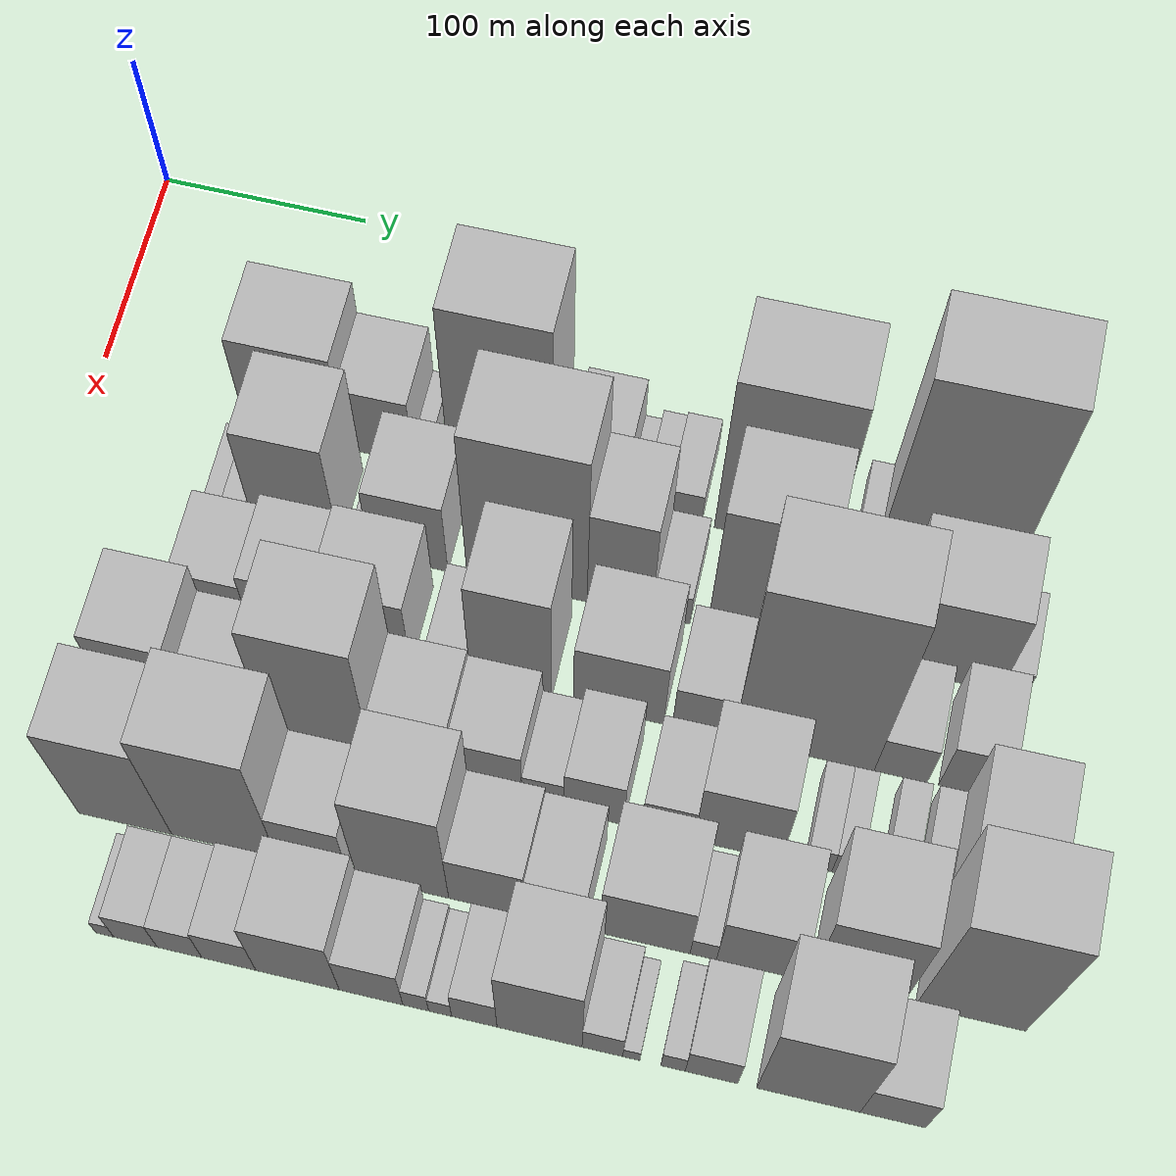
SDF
<sdf version="1.6">
 <world name="default">
  <model name="building_22">
   <static>1</static>
   <pose>100.0000 98.5002 0 0.000000 0.000000 0.000000</pose>
   <link name="link">
    <pose>0 0 43.50 0 0 0</pose>
    <collision name="collision"><geometry><box><size>40.0000 47.4005 87.0000</size></box></geometry></collision>
    <visual name="visual">
     <cast_shadows>0</cast_shadows>
     <geometry><box><size>40.0000 47.4005 87.0000</size></box></geometry>
     <material>
      <script>
       <uri>model://HANNAS_wall/materials/scripts</uri>
       <uri>model://HANNAS_wall/materials/textures</uri>
       <name>vrc/HANNAS_wall</name>
      </script>
     </material>
    </visual>
   </link>
  </model>
  <model name="building_23">
   <static>1</static>
   <pose>100.0000 138.7898 0 0.000000 0.000000 0.000000</pose>
   <link name="link">
    <pose>0 0 30.00 0 0 0</pose>
    <collision name="collision"><geometry><box><size>40.0000 33.1786 60.0000</size></box></geometry></collision>
    <visual name="visual">
     <cast_shadows>0</cast_shadows>
     <geometry><box><size>40.0000 33.1786 60.0000</size></box></geometry>
     <material>
      <script>
       <uri>model://HANNAS_wall/materials/scripts</uri>
       <uri>model://HANNAS_wall/materials/textures</uri>
       <name>vrc/HANNAS_wall</name>
      </script>
     </material>
    </visual>
   </link>
  </model>
  <model name="building_24">
   <static>1</static>
   <pose>100.0000 159.4438 0 0.000000 0.000000 0.000000</pose>
   <link name="link">
    <pose>0 0 9.00 0 0 0</pose>
    <collision name="collision"><geometry><box><size>40.0000 8.1295 18.0000</size></box></geometry></collision>
    <visual name="visual">
     <cast_shadows>0</cast_shadows>
     <geometry><box><size>40.0000 8.1295 18.0000</size></box></geometry>
     <material>
      <script>
       <uri>model://HANNAS_wall/materials/scripts</uri>
       <uri>model://HANNAS_wall/materials/textures</uri>
       <name>vrc/HANNAS_wall</name>
      </script>
     </material>
    </visual>
   </link>
  </model>
  <model name="building_25">
   <static>1</static>
   <pose>100.0000 197.3159 0 0.000000 0.000000 0.000000</pose>
   <link name="link">
    <pose>0 0 78.00 0 0 0</pose>
    <collision name="collision"><geometry><box><size>40.0000 49.6146 156.0000</size></box></geometry></collision>
    <visual name="visual">
     <cast_shadows>0</cast_shadows>
     <geometry><box><size>40.0000 49.6146 156.0000</size></box></geometry>
     <material>
      <script>
       <uri>model://HANNAS_wall/materials/scripts</uri>
       <uri>model://HANNAS_wall/materials/textures</uri>
       <name>vrc/HANNAS_wall</name>
      </script>
     </material>
    </visual>
   </link>
  </model>
  <model name="building_26">
   <static>1</static>
   <pose>100.0000 242.6828 0 0.000000 0.000000 0.000000</pose>
   <link name="link">
    <pose>0 0 27.00 0 0 0</pose>
    <collision name="collision"><geometry><box><size>40.0000 27.1191 54.0000</size></box></geometry></collision>
    <visual name="visual">
     <cast_shadows>0</cast_shadows>
     <geometry><box><size>40.0000 27.1191 54.0000</size></box></geometry>
     <material>
      <script>
       <uri>model://HANNAS_wall/materials/scripts</uri>
       <uri>model://HANNAS_wall/materials/textures</uri>
       <name>vrc/HANNAS_wall</name>
      </script>
     </material>
    </visual>
   </link>
  </model>
  <model name="building_27">
   <static>1</static>
   <pose>100.0000 260.3676 0 0.000000 0.000000 0.000000</pose>
   <link name="link">
    <pose>0 0 9.00 0 0 0</pose>
    <collision name="collision"><geometry><box><size>40.0000 8.2504 18.0000</size></box></geometry></collision>
    <visual name="visual">
     <cast_shadows>0</cast_shadows>
     <geometry><box><size>40.0000 8.2504 18.0000</size></box></geometry>
     <material>
      <script>
       <uri>model://HANNAS_wall/materials/scripts</uri>
       <uri>model://HANNAS_wall/materials/textures</uri>
       <name>vrc/HANNAS_wall</name>
      </script>
     </material>
    </visual>
   </link>
  </model>
  <model name="building_28">
   <static>1</static>
   <pose>100.0000 270.0433 0 0.000000 0.000000 0.000000</pose>
   <link name="link">
    <pose>0 0 13.50 0 0 0</pose>
    <collision name="collision"><geometry><box><size>40.0000 11.1012 27.0000</size></box></geometry></collision>
    <visual name="visual">
     <cast_shadows>0</cast_shadows>
     <geometry><box><size>40.0000 11.1012 27.0000</size></box></geometry>
     <material>
      <script>
       <uri>model://HANNAS_wall/materials/scripts</uri>
       <uri>model://HANNAS_wall/materials/textures</uri>
       <name>vrc/HANNAS_wall</name>
      </script>
     </material>
    </visual>
   </link>
  </model>
  <model name="building_29">
   <static>1</static>
   <pose>100.0000 283.6312 0 0.000000 0.000000 0.000000</pose>
   <link name="link">
    <pose>0 0 15.00 0 0 0</pose>
    <collision name="collision"><geometry><box><size>40.0000 16.0745 30.0000</size></box></geometry></collision>
    <visual name="visual">
     <cast_shadows>0</cast_shadows>
     <geometry><box><size>40.0000 16.0745 30.0000</size></box></geometry>
     <material>
      <script>
       <uri>model://HANNAS_wall/materials/scripts</uri>
       <uri>model://HANNAS_wall/materials/textures</uri>
       <name>vrc/HANNAS_wall</name>
      </script>
     </material>
    </visual>
   </link>
  </model>
  <model name="building_30">
   <static>1</static>
   <pose>100.0000 325.2024 0 0.000000 0.000000 0.000000</pose>
   <link name="link">
    <pose>0 0 73.50 0 0 0</pose>
    <collision name="collision"><geometry><box><size>40.0000 55.0679 147.0000</size></box></geometry></collision>
    <visual name="visual">
     <cast_shadows>0</cast_shadows>
     <geometry><box><size>40.0000 55.0679 147.0000</size></box></geometry>
     <material>
      <script>
       <uri>model://HANNAS_wall/materials/scripts</uri>
       <uri>model://HANNAS_wall/materials/textures</uri>
       <name>vrc/HANNAS_wall</name>
      </script>
     </material>
    </visual>
   </link>
  </model>
  <model name="building_31">
   <static>1</static>
   <pose>100.0000 366.8313 0 0.000000 0.000000 0.000000</pose>
   <link name="link">
    <pose>0 0 10.50 0 0 0</pose>
    <collision name="collision"><geometry><box><size>40.0000 10.1898 21.0000</size></box></geometry></collision>
    <visual name="visual">
     <cast_shadows>0</cast_shadows>
     <geometry><box><size>40.0000 10.1898 21.0000</size></box></geometry>
     <material>
      <script>
       <uri>model://HANNAS_wall/materials/scripts</uri>
       <uri>model://HANNAS_wall/materials/textures</uri>
       <name>vrc/HANNAS_wall</name>
      </script>
     </material>
    </visual>
   </link>
  </model>
  <model name="building_32">
   <static>1</static>
   <pose>100.0000 402.4105 0 0.000000 0.000000 0.000000</pose>
   <link name="link">
    <pose>0 0 91.50 0 0 0</pose>
    <collision name="collision"><geometry><box><size>40.0000 60.9687 183.0000</size></box></geometry></collision>
    <visual name="visual">
     <cast_shadows>0</cast_shadows>
     <geometry><box><size>40.0000 60.9687 183.0000</size></box></geometry>
     <material>
      <script>
       <uri>model://HANNAS_wall/materials/scripts</uri>
       <uri>model://HANNAS_wall/materials/textures</uri>
       <name>vrc/HANNAS_wall</name>
      </script>
     </material>
    </visual>
   </link>
  </model>
  <model name="building_67">
   <static>1</static>
   <pose>149.0000 75.5217 0 0.000000 0.000000 0.000000</pose>
   <link name="link">
    <pose>0 0 10.50 0 0 0</pose>
    <collision name="collision"><geometry><box><size>40.0000 9.7990 21.0000</size></box></geometry></collision>
    <visual name="visual">
     <cast_shadows>0</cast_shadows>
     <geometry><box><size>40.0000 9.7990 21.0000</size></box></geometry>
     <material>
      <script>
       <uri>model://HANNAS_wall/materials/scripts</uri>
       <uri>model://HANNAS_wall/materials/textures</uri>
       <name>vrc/HANNAS_wall</name>
      </script>
     </material>
    </visual>
   </link>
  </model>
  <model name="building_68">
   <static>1</static>
   <pose>149.0000 86.8591 0 0.000000 0.000000 0.000000</pose>
   <link name="link">
    <pose>0 0 13.50 0 0 0</pose>
    <collision name="collision"><geometry><box><size>40.0000 12.8757 27.0000</size></box></geometry></collision>
    <visual name="visual">
     <cast_shadows>0</cast_shadows>
     <geometry><box><size>40.0000 12.8757 27.0000</size></box></geometry>
     <material>
      <script>
       <uri>model://HANNAS_wall/materials/scripts</uri>
       <uri>model://HANNAS_wall/materials/textures</uri>
       <name>vrc/HANNAS_wall</name>
      </script>
     </material>
    </visual>
   </link>
  </model>
  <model name="building_69">
   <static>1</static>
   <pose>149.0000 113.3818 0 0.000000 0.000000 0.000000</pose>
   <link name="link">
    <pose>0 0 51.00 0 0 0</pose>
    <collision name="collision"><geometry><box><size>40.0000 40.1697 102.0000</size></box></geometry></collision>
    <visual name="visual">
     <cast_shadows>0</cast_shadows>
     <geometry><box><size>40.0000 40.1697 102.0000</size></box></geometry>
     <material>
      <script>
       <uri>model://HANNAS_wall/materials/scripts</uri>
       <uri>model://HANNAS_wall/materials/textures</uri>
       <name>vrc/HANNAS_wall</name>
      </script>
     </material>
    </visual>
   </link>
  </model>
  <model name="building_70">
   <static>1</static>
   <pose>149.0000 141.5903 0 0.000000 0.000000 0.000000</pose>
   <link name="link">
    <pose>0 0 7.50 0 0 0</pose>
    <collision name="collision"><geometry><box><size>40.0000 6.2473 15.0000</size></box></geometry></collision>
    <visual name="visual">
     <cast_shadows>0</cast_shadows>
     <geometry><box><size>40.0000 6.2473 15.0000</size></box></geometry>
     <material>
      <script>
       <uri>model://HANNAS_wall/materials/scripts</uri>
       <uri>model://HANNAS_wall/materials/textures</uri>
       <name>vrc/HANNAS_wall</name>
      </script>
     </material>
    </visual>
   </link>
  </model>
  <model name="building_71">
   <static>1</static>
   <pose>149.0000 165.9628 0 0.000000 0.000000 0.000000</pose>
   <link name="link">
    <pose>0 0 34.50 0 0 0</pose>
    <collision name="collision"><geometry><box><size>40.0000 36.4979 69.0000</size></box></geometry></collision>
    <visual name="visual">
     <cast_shadows>0</cast_shadows>
     <geometry><box><size>40.0000 36.4979 69.0000</size></box></geometry>
     <material>
      <script>
       <uri>model://HANNAS_wall/materials/scripts</uri>
       <uri>model://HANNAS_wall/materials/textures</uri>
       <name>vrc/HANNAS_wall</name>
      </script>
     </material>
    </visual>
   </link>
  </model>
  <model name="building_72">
   <static>1</static>
   <pose>149.0000 221.1073 0 0.000000 0.000000 0.000000</pose>
   <link name="link">
    <pose>0 0 73.50 0 0 0</pose>
    <collision name="collision"><geometry><box><size>40.0000 55.7910 147.0000</size></box></geometry></collision>
    <visual name="visual">
     <cast_shadows>0</cast_shadows>
     <geometry><box><size>40.0000 55.7910 147.0000</size></box></geometry>
     <material>
      <script>
       <uri>model://HANNAS_wall/materials/scripts</uri>
       <uri>model://HANNAS_wall/materials/textures</uri>
       <name>vrc/HANNAS_wall</name>
      </script>
     </material>
    </visual>
   </link>
  </model>
  <model name="building_73">
   <static>1</static>
   <pose>149.0000 264.0229 0 0.000000 0.000000 0.000000</pose>
   <link name="link">
    <pose>0 0 48.00 0 0 0</pose>
    <collision name="collision"><geometry><box><size>40.0000 30.0404 96.0000</size></box></geometry></collision>
    <visual name="visual">
     <cast_shadows>0</cast_shadows>
     <geometry><box><size>40.0000 30.0404 96.0000</size></box></geometry>
     <material>
      <script>
       <uri>model://HANNAS_wall/materials/scripts</uri>
       <uri>model://HANNAS_wall/materials/textures</uri>
       <name>vrc/HANNAS_wall</name>
      </script>
     </material>
    </visual>
   </link>
  </model>
  <model name="building_74">
   <static>1</static>
   <pose>149.0000 287.8176 0 0.000000 0.000000 0.000000</pose>
   <link name="link">
    <pose>0 0 15.00 0 0 0</pose>
    <collision name="collision"><geometry><box><size>40.0000 17.5490 30.0000</size></box></geometry></collision>
    <visual name="visual">
     <cast_shadows>0</cast_shadows>
     <geometry><box><size>40.0000 17.5490 30.0000</size></box></geometry>
     <material>
      <script>
       <uri>model://HANNAS_wall/materials/scripts</uri>
       <uri>model://HANNAS_wall/materials/textures</uri>
       <name>vrc/HANNAS_wall</name>
      </script>
     </material>
    </visual>
   </link>
  </model>
  <model name="building_75">
   <static>1</static>
   <pose>149.0000 327.8908 0 0.000000 0.000000 0.000000</pose>
   <link name="link">
    <pose>0 0 64.50 0 0 0</pose>
    <collision name="collision"><geometry><box><size>40.0000 46.5974 129.0000</size></box></geometry></collision>
    <visual name="visual">
     <cast_shadows>0</cast_shadows>
     <geometry><box><size>40.0000 46.5974 129.0000</size></box></geometry>
     <material>
      <script>
       <uri>model://HANNAS_wall/materials/scripts</uri>
       <uri>model://HANNAS_wall/materials/textures</uri>
       <name>vrc/HANNAS_wall</name>
      </script>
     </material>
    </visual>
   </link>
  </model>
  <model name="building_76">
   <static>1</static>
   <pose>149.0000 365.9587 0 0.000000 0.000000 0.000000</pose>
   <link name="link">
    <pose>0 0 21.00 0 0 0</pose>
    <collision name="collision"><geometry><box><size>40.0000 23.5384 42.0000</size></box></geometry></collision>
    <visual name="visual">
     <cast_shadows>0</cast_shadows>
     <geometry><box><size>40.0000 23.5384 42.0000</size></box></geometry>
     <material>
      <script>
       <uri>model://HANNAS_wall/materials/scripts</uri>
       <uri>model://HANNAS_wall/materials/textures</uri>
       <name>vrc/HANNAS_wall</name>
      </script>
     </material>
    </visual>
   </link>
  </model>
  <model name="building_77">
   <static>1</static>
   <pose>149.0000 412.7549 0 0.000000 0.000000 0.000000</pose>
   <link name="link">
    <pose>0 0 42.00 0 0 0</pose>
    <collision name="collision"><geometry><box><size>40.0000 50.0541 84.0000</size></box></geometry></collision>
    <visual name="visual">
     <cast_shadows>0</cast_shadows>
     <geometry><box><size>40.0000 50.0541 84.0000</size></box></geometry>
     <material>
      <script>
       <uri>model://HANNAS_wall/materials/scripts</uri>
       <uri>model://HANNAS_wall/materials/textures</uri>
       <name>vrc/HANNAS_wall</name>
      </script>
     </material>
    </visual>
   </link>
  </model>
  <model name="building_78">
   <static>1</static>
   <pose>149.0000 443.3810 0 0.000000 0.000000 0.000000</pose>
   <link name="link">
    <pose>0 0 13.50 0 0 0</pose>
    <collision name="collision"><geometry><box><size>40.0000 11.1980 27.0000</size></box></geometry></collision>
    <visual name="visual">
     <cast_shadows>0</cast_shadows>
     <geometry><box><size>40.0000 11.1980 27.0000</size></box></geometry>
     <material>
      <script>
       <uri>model://HANNAS_wall/materials/scripts</uri>
       <uri>model://HANNAS_wall/materials/textures</uri>
       <name>vrc/HANNAS_wall</name>
      </script>
     </material>
    </visual>
   </link>
  </model>
  <model name="building_116">
   <static>1</static>
   <pose>198.0000 89.7325 0 0.000000 0.000000 0.000000</pose>
   <link name="link">
    <pose>0 0 27.00 0 0 0</pose>
    <collision name="collision"><geometry><box><size>40.0000 32.1059 54.0000</size></box></geometry></collision>
    <visual name="visual">
     <cast_shadows>0</cast_shadows>
     <geometry><box><size>40.0000 32.1059 54.0000</size></box></geometry>
     <material>
      <script>
       <uri>model://HANNAS_wall/materials/scripts</uri>
       <uri>model://HANNAS_wall/materials/textures</uri>
       <name>vrc/HANNAS_wall</name>
      </script>
     </material>
    </visual>
   </link>
  </model>
  <model name="building_117">
   <static>1</static>
   <pose>198.0000 122.3365 0 0.000000 0.000000 0.000000</pose>
   <link name="link">
    <pose>0 0 33.00 0 0 0</pose>
    <collision name="collision"><geometry><box><size>40.0000 33.1022 66.0000</size></box></geometry></collision>
    <visual name="visual">
     <cast_shadows>0</cast_shadows>
     <geometry><box><size>40.0000 33.1022 66.0000</size></box></geometry>
     <material>
      <script>
       <uri>model://HANNAS_wall/materials/scripts</uri>
       <uri>model://HANNAS_wall/materials/textures</uri>
       <name>vrc/HANNAS_wall</name>
      </script>
     </material>
    </visual>
   </link>
  </model>
  <model name="building_118">
   <static>1</static>
   <pose>198.0000 159.2353 0 0.000000 0.000000 0.000000</pose>
   <link name="link">
    <pose>0 0 36.00 0 0 0</pose>
    <collision name="collision"><geometry><box><size>40.0000 40.6956 72.0000</size></box></geometry></collision>
    <visual name="visual">
     <cast_shadows>0</cast_shadows>
     <geometry><box><size>40.0000 40.6956 72.0000</size></box></geometry>
     <material>
      <script>
       <uri>model://HANNAS_wall/materials/scripts</uri>
       <uri>model://HANNAS_wall/materials/textures</uri>
       <name>vrc/HANNAS_wall</name>
      </script>
     </material>
    </visual>
   </link>
  </model>
  <model name="building_119">
   <static>1</static>
   <pose>198.0000 197.3351 0 0.000000 0.000000 0.000000</pose>
   <link name="link">
    <pose>0 0 16.50 0 0 0</pose>
    <collision name="collision"><geometry><box><size>40.0000 19.5040 33.0000</size></box></geometry></collision>
    <visual name="visual">
     <cast_shadows>0</cast_shadows>
     <geometry><box><size>40.0000 19.5040 33.0000</size></box></geometry>
     <material>
      <script>
       <uri>model://HANNAS_wall/materials/scripts</uri>
       <uri>model://HANNAS_wall/materials/textures</uri>
       <name>vrc/HANNAS_wall</name>
      </script>
     </material>
    </visual>
   </link>
  </model>
  <model name="building_120">
   <static>1</static>
   <pose>198.0000 225.5408 0 0.000000 0.000000 0.000000</pose>
   <link name="link">
    <pose>0 0 55.50 0 0 0</pose>
    <collision name="collision"><geometry><box><size>40.0000 36.9075 111.0000</size></box></geometry></collision>
    <visual name="visual">
     <cast_shadows>0</cast_shadows>
     <geometry><box><size>40.0000 36.9075 111.0000</size></box></geometry>
     <material>
      <script>
       <uri>model://HANNAS_wall/materials/scripts</uri>
       <uri>model://HANNAS_wall/materials/textures</uri>
       <name>vrc/HANNAS_wall</name>
      </script>
     </material>
    </visual>
   </link>
  </model>
  <model name="building_121">
   <static>1</static>
   <pose>198.0000 274.4796 0 0.000000 0.000000 0.000000</pose>
   <link name="link">
    <pose>0 0 34.50 0 0 0</pose>
    <collision name="collision"><geometry><box><size>40.0000 40.9701 69.0000</size></box></geometry></collision>
    <visual name="visual">
     <cast_shadows>0</cast_shadows>
     <geometry><box><size>40.0000 40.9701 69.0000</size></box></geometry>
     <material>
      <script>
       <uri>model://HANNAS_wall/materials/scripts</uri>
       <uri>model://HANNAS_wall/materials/textures</uri>
       <name>vrc/HANNAS_wall</name>
      </script>
     </material>
    </visual>
   </link>
  </model>
  <model name="building_122">
   <static>1</static>
   <pose>198.0000 312.6198 0 0.000000 0.000000 0.000000</pose>
   <link name="link">
    <pose>0 0 24.00 0 0 0</pose>
    <collision name="collision"><geometry><box><size>40.0000 27.3102 48.0000</size></box></geometry></collision>
    <visual name="visual">
     <cast_shadows>0</cast_shadows>
     <geometry><box><size>40.0000 27.3102 48.0000</size></box></geometry>
     <material>
      <script>
       <uri>model://HANNAS_wall/materials/scripts</uri>
       <uri>model://HANNAS_wall/materials/textures</uri>
       <name>vrc/HANNAS_wall</name>
      </script>
     </material>
    </visual>
   </link>
  </model>
  <model name="building_123">
   <static>1</static>
   <pose>198.0000 357.9721 0 0.000000 0.000000 0.000000</pose>
   <link name="link">
    <pose>0 0 88.50 0 0 0</pose>
    <collision name="collision"><geometry><box><size>40.0000 63.3944 177.0000</size></box></geometry></collision>
    <visual name="visual">
     <cast_shadows>0</cast_shadows>
     <geometry><box><size>40.0000 63.3944 177.0000</size></box></geometry>
     <material>
      <script>
       <uri>model://HANNAS_wall/materials/scripts</uri>
       <uri>model://HANNAS_wall/materials/textures</uri>
       <name>vrc/HANNAS_wall</name>
      </script>
     </material>
    </visual>
   </link>
  </model>
  <model name="building_124">
   <static>1</static>
   <pose>198.0000 401.4758 0 0.000000 0.000000 0.000000</pose>
   <link name="link">
    <pose>0 0 21.00 0 0 0</pose>
    <collision name="collision"><geometry><box><size>40.0000 23.6131 42.0000</size></box></geometry></collision>
    <visual name="visual">
     <cast_shadows>0</cast_shadows>
     <geometry><box><size>40.0000 23.6131 42.0000</size></box></geometry>
     <material>
      <script>
       <uri>model://HANNAS_wall/materials/scripts</uri>
       <uri>model://HANNAS_wall/materials/textures</uri>
       <name>vrc/HANNAS_wall</name>
      </script>
     </material>
    </visual>
   </link>
  </model>
  <model name="building_125">
   <static>1</static>
   <pose>198.0000 431.4128 0 0.000000 0.000000 0.000000</pose>
   <link name="link">
    <pose>0 0 25.50 0 0 0</pose>
    <collision name="collision"><geometry><box><size>40.0000 26.2608 51.0000</size></box></geometry></collision>
    <visual name="visual">
     <cast_shadows>0</cast_shadows>
     <geometry><box><size>40.0000 26.2608 51.0000</size></box></geometry>
     <material>
      <script>
       <uri>model://HANNAS_wall/materials/scripts</uri>
       <uri>model://HANNAS_wall/materials/textures</uri>
       <name>vrc/HANNAS_wall</name>
      </script>
     </material>
    </visual>
   </link>
  </model>
  <model name="building_166">
   <static>1</static>
   <pose>247.0000 74.2222 0 0.000000 0.000000 0.000000</pose>
   <link name="link">
    <pose>0 0 46.50 0 0 0</pose>
    <collision name="collision"><geometry><box><size>40.0000 36.1465 93.0000</size></box></geometry></collision>
    <visual name="visual">
     <cast_shadows>0</cast_shadows>
     <geometry><box><size>40.0000 36.1465 93.0000</size></box></geometry>
     <material>
      <script>
       <uri>model://HANNAS_wall/materials/scripts</uri>
       <uri>model://HANNAS_wall/materials/textures</uri>
       <name>vrc/HANNAS_wall</name>
      </script>
     </material>
    </visual>
   </link>
  </model>
  <model name="building_167">
   <static>1</static>
   <pose>247.0000 110.8225 0 0.000000 0.000000 0.000000</pose>
   <link name="link">
    <pose>0 0 33.00 0 0 0</pose>
    <collision name="collision"><geometry><box><size>40.0000 37.0540 66.0000</size></box></geometry></collision>
    <visual name="visual">
     <cast_shadows>0</cast_shadows>
     <geometry><box><size>40.0000 37.0540 66.0000</size></box></geometry>
     <material>
      <script>
       <uri>model://HANNAS_wall/materials/scripts</uri>
       <uri>model://HANNAS_wall/materials/textures</uri>
       <name>vrc/HANNAS_wall</name>
      </script>
     </material>
    </visual>
   </link>
  </model>
  <model name="building_168">
   <static>1</static>
   <pose>247.0000 152.5509 0 0.000000 0.000000 0.000000</pose>
   <link name="link">
    <pose>0 0 70.50 0 0 0</pose>
    <collision name="collision"><geometry><box><size>40.0000 46.4029 141.0000</size></box></geometry></collision>
    <visual name="visual">
     <cast_shadows>0</cast_shadows>
     <geometry><box><size>40.0000 46.4029 141.0000</size></box></geometry>
     <material>
      <script>
       <uri>model://HANNAS_wall/materials/scripts</uri>
       <uri>model://HANNAS_wall/materials/textures</uri>
       <name>vrc/HANNAS_wall</name>
      </script>
     </material>
    </visual>
   </link>
  </model>
  <model name="building_169">
   <static>1</static>
   <pose>247.0000 192.9560 0 0.000000 0.000000 0.000000</pose>
   <link name="link">
    <pose>0 0 33.00 0 0 0</pose>
    <collision name="collision"><geometry><box><size>40.0000 34.4074 66.0000</size></box></geometry></collision>
    <visual name="visual">
     <cast_shadows>0</cast_shadows>
     <geometry><box><size>40.0000 34.4074 66.0000</size></box></geometry>
     <material>
      <script>
       <uri>model://HANNAS_wall/materials/scripts</uri>
       <uri>model://HANNAS_wall/materials/textures</uri>
       <name>vrc/HANNAS_wall</name>
      </script>
     </material>
    </visual>
   </link>
  </model>
  <model name="building_170">
   <static>1</static>
   <pose>247.0000 226.3251 0 0.000000 0.000000 0.000000</pose>
   <link name="link">
    <pose>0 0 30.00 0 0 0</pose>
    <collision name="collision"><geometry><box><size>40.0000 32.3307 60.0000</size></box></geometry></collision>
    <visual name="visual">
     <cast_shadows>0</cast_shadows>
     <geometry><box><size>40.0000 32.3307 60.0000</size></box></geometry>
     <material>
      <script>
       <uri>model://HANNAS_wall/materials/scripts</uri>
       <uri>model://HANNAS_wall/materials/textures</uri>
       <name>vrc/HANNAS_wall</name>
      </script>
     </material>
    </visual>
   </link>
  </model>
  <model name="building_171">
   <static>1</static>
   <pose>247.0000 251.8484 0 0.000000 0.000000 0.000000</pose>
   <link name="link">
    <pose>0 0 18.00 0 0 0</pose>
    <collision name="collision"><geometry><box><size>40.0000 18.7160 36.0000</size></box></geometry></collision>
    <visual name="visual">
     <cast_shadows>0</cast_shadows>
     <geometry><box><size>40.0000 18.7160 36.0000</size></box></geometry>
     <material>
      <script>
       <uri>model://HANNAS_wall/materials/scripts</uri>
       <uri>model://HANNAS_wall/materials/textures</uri>
       <name>vrc/HANNAS_wall</name>
      </script>
     </material>
    </visual>
   </link>
  </model>
  <model name="building_172">
   <static>1</static>
   <pose>247.0000 274.5380 0 0.000000 0.000000 0.000000</pose>
   <link name="link">
    <pose>0 0 25.50 0 0 0</pose>
    <collision name="collision"><geometry><box><size>40.0000 26.6631 51.0000</size></box></geometry></collision>
    <visual name="visual">
     <cast_shadows>0</cast_shadows>
     <geometry><box><size>40.0000 26.6631 51.0000</size></box></geometry>
     <material>
      <script>
       <uri>model://HANNAS_wall/materials/scripts</uri>
       <uri>model://HANNAS_wall/materials/textures</uri>
       <name>vrc/HANNAS_wall</name>
      </script>
     </material>
    </visual>
   </link>
  </model>
  <model name="building_173">
   <static>1</static>
   <pose>247.0000 307.4776 0 0.000000 0.000000 0.000000</pose>
   <link name="link">
    <pose>0 0 19.50 0 0 0</pose>
    <collision name="collision"><geometry><box><size>40.0000 23.2162 39.0000</size></box></geometry></collision>
    <visual name="visual">
     <cast_shadows>0</cast_shadows>
     <geometry><box><size>40.0000 23.2162 39.0000</size></box></geometry>
     <material>
      <script>
       <uri>model://HANNAS_wall/materials/scripts</uri>
       <uri>model://HANNAS_wall/materials/textures</uri>
       <name>vrc/HANNAS_wall</name>
      </script>
     </material>
    </visual>
   </link>
  </model>
  <model name="building_174">
   <static>1</static>
   <pose>247.0000 338.3512 0 0.000000 0.000000 0.000000</pose>
   <link name="link">
    <pose>0 0 37.50 0 0 0</pose>
    <collision name="collision"><geometry><box><size>40.0000 38.5310 75.0000</size></box></geometry></collision>
    <visual name="visual">
     <cast_shadows>0</cast_shadows>
     <geometry><box><size>40.0000 38.5310 75.0000</size></box></geometry>
     <material>
      <script>
       <uri>model://HANNAS_wall/materials/scripts</uri>
       <uri>model://HANNAS_wall/materials/textures</uri>
       <name>vrc/HANNAS_wall</name>
      </script>
     </material>
    </visual>
   </link>
  </model>
  <model name="building_175">
   <static>1</static>
   <pose>247.0000 373.7260 0 0.000000 0.000000 0.000000</pose>
   <link name="link">
    <pose>0 0 13.50 0 0 0</pose>
    <collision name="collision"><geometry><box><size>40.0000 12.2186 27.0000</size></box></geometry></collision>
    <visual name="visual">
     <cast_shadows>0</cast_shadows>
     <geometry><box><size>40.0000 12.2186 27.0000</size></box></geometry>
     <material>
      <script>
       <uri>model://HANNAS_wall/materials/scripts</uri>
       <uri>model://HANNAS_wall/materials/textures</uri>
       <name>vrc/HANNAS_wall</name>
      </script>
     </material>
    </visual>
   </link>
  </model>
  <model name="building_176">
   <static>1</static>
   <pose>247.0000 385.2512 0 0.000000 0.000000 0.000000</pose>
   <link name="link">
    <pose>0 0 13.50 0 0 0</pose>
    <collision name="collision"><geometry><box><size>40.0000 10.8317 27.0000</size></box></geometry></collision>
    <visual name="visual">
     <cast_shadows>0</cast_shadows>
     <geometry><box><size>40.0000 10.8317 27.0000</size></box></geometry>
     <material>
      <script>
       <uri>model://HANNAS_wall/materials/scripts</uri>
       <uri>model://HANNAS_wall/materials/textures</uri>
       <name>vrc/HANNAS_wall</name>
      </script>
     </material>
    </visual>
   </link>
  </model>
  <model name="building_177">
   <static>1</static>
   <pose>247.0000 407.2228 0 0.000000 0.000000 0.000000</pose>
   <link name="link">
    <pose>0 0 13.50 0 0 0</pose>
    <collision name="collision"><geometry><box><size>40.0000 13.1115 27.0000</size></box></geometry></collision>
    <visual name="visual">
     <cast_shadows>0</cast_shadows>
     <geometry><box><size>40.0000 13.1115 27.0000</size></box></geometry>
     <material>
      <script>
       <uri>model://HANNAS_wall/materials/scripts</uri>
       <uri>model://HANNAS_wall/materials/textures</uri>
       <name>vrc/HANNAS_wall</name>
      </script>
     </material>
    </visual>
   </link>
  </model>
  <model name="building_178">
   <static>1</static>
   <pose>247.0000 422.6916 0 0.000000 0.000000 0.000000</pose>
   <link name="link">
    <pose>0 0 13.50 0 0 0</pose>
    <collision name="collision"><geometry><box><size>40.0000 11.8261 27.0000</size></box></geometry></collision>
    <visual name="visual">
     <cast_shadows>0</cast_shadows>
     <geometry><box><size>40.0000 11.8261 27.0000</size></box></geometry>
     <material>
      <script>
       <uri>model://HANNAS_wall/materials/scripts</uri>
       <uri>model://HANNAS_wall/materials/textures</uri>
       <name>vrc/HANNAS_wall</name>
      </script>
     </material>
    </visual>
   </link>
  </model>
  <model name="building_179">
   <static>1</static>
   <pose>247.0000 446.6276 0 0.000000 0.000000 0.000000</pose>
   <link name="link">
    <pose>0 0 46.50 0 0 0</pose>
    <collision name="collision"><geometry><box><size>40.0000 36.0460 93.0000</size></box></geometry></collision>
    <visual name="visual">
     <cast_shadows>0</cast_shadows>
     <geometry><box><size>40.0000 36.0460 93.0000</size></box></geometry>
     <material>
      <script>
       <uri>model://HANNAS_wall/materials/scripts</uri>
       <uri>model://HANNAS_wall/materials/textures</uri>
       <name>vrc/HANNAS_wall</name>
      </script>
     </material>
    </visual>
   </link>
  </model>
  <model name="building_214">
   <static>1</static>
   <pose>296.0000 76.5770 0 0.000000 0.000000 0.000000</pose>
   <link name="link">
    <pose>0 0 54.00 0 0 0</pose>
    <collision name="collision"><geometry><box><size>40.0000 42.2051 108.0000</size></box></geometry></collision>
    <visual name="visual">
     <cast_shadows>0</cast_shadows>
     <geometry><box><size>40.0000 42.2051 108.0000</size></box></geometry>
     <material>
      <script>
       <uri>model://HANNAS_wall/materials/scripts</uri>
       <uri>model://HANNAS_wall/materials/textures</uri>
       <name>vrc/HANNAS_wall</name>
      </script>
     </material>
    </visual>
   </link>
  </model>
  <model name="building_215">
   <static>1</static>
   <pose>296.0000 121.5272 0 0.000000 0.000000 0.000000</pose>
   <link name="link">
    <pose>0 0 64.50 0 0 0</pose>
    <collision name="collision"><geometry><box><size>40.0000 47.6953 129.0000</size></box></geometry></collision>
    <visual name="visual">
     <cast_shadows>0</cast_shadows>
     <geometry><box><size>40.0000 47.6953 129.0000</size></box></geometry>
     <material>
      <script>
       <uri>model://HANNAS_wall/materials/scripts</uri>
       <uri>model://HANNAS_wall/materials/textures</uri>
       <name>vrc/HANNAS_wall</name>
      </script>
     </material>
    </visual>
   </link>
  </model>
  <model name="building_216">
   <static>1</static>
   <pose>296.0000 161.1675 0 0.000000 0.000000 0.000000</pose>
   <link name="link">
    <pose>0 0 30.00 0 0 0</pose>
    <collision name="collision"><geometry><box><size>40.0000 31.5852 60.0000</size></box></geometry></collision>
    <visual name="visual">
     <cast_shadows>0</cast_shadows>
     <geometry><box><size>40.0000 31.5852 60.0000</size></box></geometry>
     <material>
      <script>
       <uri>model://HANNAS_wall/materials/scripts</uri>
       <uri>model://HANNAS_wall/materials/textures</uri>
       <name>vrc/HANNAS_wall</name>
      </script>
     </material>
    </visual>
   </link>
  </model>
  <model name="building_217">
   <static>1</static>
   <pose>296.0000 201.3508 0 0.000000 0.000000 0.000000</pose>
   <link name="link">
    <pose>0 0 55.50 0 0 0</pose>
    <collision name="collision"><geometry><box><size>40.0000 40.7814 111.0000</size></box></geometry></collision>
    <visual name="visual">
     <cast_shadows>0</cast_shadows>
     <geometry><box><size>40.0000 40.7814 111.0000</size></box></geometry>
     <material>
      <script>
       <uri>model://HANNAS_wall/materials/scripts</uri>
       <uri>model://HANNAS_wall/materials/textures</uri>
       <name>vrc/HANNAS_wall</name>
      </script>
     </material>
    </visual>
   </link>
  </model>
  <model name="building_218">
   <static>1</static>
   <pose>296.0000 238.4818 0 0.000000 0.000000 0.000000</pose>
   <link name="link">
    <pose>0 0 30.00 0 0 0</pose>
    <collision name="collision"><geometry><box><size>40.0000 33.4807 60.0000</size></box></geometry></collision>
    <visual name="visual">
     <cast_shadows>0</cast_shadows>
     <geometry><box><size>40.0000 33.4807 60.0000</size></box></geometry>
     <material>
      <script>
       <uri>model://HANNAS_wall/materials/scripts</uri>
       <uri>model://HANNAS_wall/materials/textures</uri>
       <name>vrc/HANNAS_wall</name>
      </script>
     </material>
    </visual>
   </link>
  </model>
  <model name="building_219">
   <static>1</static>
   <pose>296.0000 268.7304 0 0.000000 0.000000 0.000000</pose>
   <link name="link">
    <pose>0 0 27.00 0 0 0</pose>
    <collision name="collision"><geometry><box><size>40.0000 27.0164 54.0000</size></box></geometry></collision>
    <visual name="visual">
     <cast_shadows>0</cast_shadows>
     <geometry><box><size>40.0000 27.0164 54.0000</size></box></geometry>
     <material>
      <script>
       <uri>model://HANNAS_wall/materials/scripts</uri>
       <uri>model://HANNAS_wall/materials/textures</uri>
       <name>vrc/HANNAS_wall</name>
      </script>
     </material>
    </visual>
   </link>
  </model>
  <model name="building_220">
   <static>1</static>
   <pose>296.0000 307.9501 0 0.000000 0.000000 0.000000</pose>
   <link name="link">
    <pose>0 0 33.00 0 0 0</pose>
    <collision name="collision"><geometry><box><size>40.0000 39.4230 66.0000</size></box></geometry></collision>
    <visual name="visual">
     <cast_shadows>0</cast_shadows>
     <geometry><box><size>40.0000 39.4230 66.0000</size></box></geometry>
     <material>
      <script>
       <uri>model://HANNAS_wall/materials/scripts</uri>
       <uri>model://HANNAS_wall/materials/textures</uri>
       <name>vrc/HANNAS_wall</name>
      </script>
     </material>
    </visual>
   </link>
  </model>
  <model name="building_221">
   <static>1</static>
   <pose>296.0000 333.4103 0 0.000000 0.000000 0.000000</pose>
   <link name="link">
    <pose>0 0 12.00 0 0 0</pose>
    <collision name="collision"><geometry><box><size>40.0000 11.4974 24.0000</size></box></geometry></collision>
    <visual name="visual">
     <cast_shadows>0</cast_shadows>
     <geometry><box><size>40.0000 11.4974 24.0000</size></box></geometry>
     <material>
      <script>
       <uri>model://HANNAS_wall/materials/scripts</uri>
       <uri>model://HANNAS_wall/materials/textures</uri>
       <name>vrc/HANNAS_wall</name>
      </script>
     </material>
    </visual>
   </link>
  </model>
  <model name="building_222">
   <static>1</static>
   <pose>296.0000 356.8070 0 0.000000 0.000000 0.000000</pose>
   <link name="link">
    <pose>0 0 31.50 0 0 0</pose>
    <collision name="collision"><geometry><box><size>40.0000 35.2961 63.0000</size></box></geometry></collision>
    <visual name="visual">
     <cast_shadows>0</cast_shadows>
     <geometry><box><size>40.0000 35.2961 63.0000</size></box></geometry>
     <material>
      <script>
       <uri>model://HANNAS_wall/materials/scripts</uri>
       <uri>model://HANNAS_wall/materials/textures</uri>
       <name>vrc/HANNAS_wall</name>
      </script>
     </material>
    </visual>
   </link>
  </model>
  <model name="building_223">
   <static>1</static>
   <pose>296.0000 399.6439 0 0.000000 0.000000 0.000000</pose>
   <link name="link">
    <pose>0 0 51.00 0 0 0</pose>
    <collision name="collision"><geometry><box><size>40.0000 40.3775 102.0000</size></box></geometry></collision>
    <visual name="visual">
     <cast_shadows>0</cast_shadows>
     <geometry><box><size>40.0000 40.3775 102.0000</size></box></geometry>
     <material>
      <script>
       <uri>model://HANNAS_wall/materials/scripts</uri>
       <uri>model://HANNAS_wall/materials/textures</uri>
       <name>vrc/HANNAS_wall</name>
      </script>
     </material>
    </visual>
   </link>
  </model>
  <model name="building_224">
   <static>1</static>
   <pose>296.0000 448.3974 0 0.000000 0.000000 0.000000</pose>
   <link name="link">
    <pose>0 0 70.50 0 0 0</pose>
    <collision name="collision"><geometry><box><size>40.0000 47.1296 141.0000</size></box></geometry></collision>
    <visual name="visual">
     <cast_shadows>0</cast_shadows>
     <geometry><box><size>40.0000 47.1296 141.0000</size></box></geometry>
     <material>
      <script>
       <uri>model://HANNAS_wall/materials/scripts</uri>
       <uri>model://HANNAS_wall/materials/textures</uri>
       <name>vrc/HANNAS_wall</name>
      </script>
     </material>
    </visual>
   </link>
  </model>
  <model name="building_263">
   <static>1</static>
   <pose>345.0000 82.6752 0 0.000000 0.000000 0.000000</pose>
   <link name="link">
    <pose>0 0 9.00 0 0 0</pose>
    <collision name="collision"><geometry><box><size>40.0000 8.0214 18.0000</size></box></geometry></collision>
    <visual name="visual">
     <cast_shadows>0</cast_shadows>
     <geometry><box><size>40.0000 8.0214 18.0000</size></box></geometry>
     <material>
      <script>
       <uri>model://HANNAS_wall/materials/scripts</uri>
       <uri>model://HANNAS_wall/materials/textures</uri>
       <name>vrc/HANNAS_wall</name>
      </script>
     </material>
    </visual>
   </link>
  </model>
  <model name="building_264">
   <static>1</static>
   <pose>345.0000 96.3222 0 0.000000 0.000000 0.000000</pose>
   <link name="link">
    <pose>0 0 18.00 0 0 0</pose>
    <collision name="collision"><geometry><box><size>40.0000 19.2727 36.0000</size></box></geometry></collision>
    <visual name="visual">
     <cast_shadows>0</cast_shadows>
     <geometry><box><size>40.0000 19.2727 36.0000</size></box></geometry>
     <material>
      <script>
       <uri>model://HANNAS_wall/materials/scripts</uri>
       <uri>model://HANNAS_wall/materials/textures</uri>
       <name>vrc/HANNAS_wall</name>
      </script>
     </material>
    </visual>
   </link>
  </model>
  <model name="building_265">
   <static>1</static>
   <pose>345.0000 115.8853 0 0.000000 0.000000 0.000000</pose>
   <link name="link">
    <pose>0 0 18.00 0 0 0</pose>
    <collision name="collision"><geometry><box><size>40.0000 19.8535 36.0000</size></box></geometry></collision>
    <visual name="visual">
     <cast_shadows>0</cast_shadows>
     <geometry><box><size>40.0000 19.8535 36.0000</size></box></geometry>
     <material>
      <script>
       <uri>model://HANNAS_wall/materials/scripts</uri>
       <uri>model://HANNAS_wall/materials/textures</uri>
       <name>vrc/HANNAS_wall</name>
      </script>
     </material>
    </visual>
   </link>
  </model>
  <model name="building_266">
   <static>1</static>
   <pose>345.0000 137.7461 0 0.000000 0.000000 0.000000</pose>
   <link name="link">
    <pose>0 0 21.00 0 0 0</pose>
    <collision name="collision"><geometry><box><size>40.0000 23.8681 42.0000</size></box></geometry></collision>
    <visual name="visual">
     <cast_shadows>0</cast_shadows>
     <geometry><box><size>40.0000 23.8681 42.0000</size></box></geometry>
     <material>
      <script>
       <uri>model://HANNAS_wall/materials/scripts</uri>
       <uri>model://HANNAS_wall/materials/textures</uri>
       <name>vrc/HANNAS_wall</name>
      </script>
     </material>
    </visual>
   </link>
  </model>
  <model name="building_267">
   <static>1</static>
   <pose>345.0000 168.0427 0 0.000000 0.000000 0.000000</pose>
   <link name="link">
    <pose>0 0 36.00 0 0 0</pose>
    <collision name="collision"><geometry><box><size>40.0000 36.7250 72.0000</size></box></geometry></collision>
    <visual name="visual">
     <cast_shadows>0</cast_shadows>
     <geometry><box><size>40.0000 36.7250 72.0000</size></box></geometry>
     <material>
      <script>
       <uri>model://HANNAS_wall/materials/scripts</uri>
       <uri>model://HANNAS_wall/materials/textures</uri>
       <name>vrc/HANNAS_wall</name>
      </script>
     </material>
    </visual>
   </link>
  </model>
  <model name="building_268">
   <static>1</static>
   <pose>345.0000 200.3047 0 0.000000 0.000000 0.000000</pose>
   <link name="link">
    <pose>0 0 25.50 0 0 0</pose>
    <collision name="collision"><geometry><box><size>40.0000 27.7989 51.0000</size></box></geometry></collision>
    <visual name="visual">
     <cast_shadows>0</cast_shadows>
     <geometry><box><size>40.0000 27.7989 51.0000</size></box></geometry>
     <material>
      <script>
       <uri>model://HANNAS_wall/materials/scripts</uri>
       <uri>model://HANNAS_wall/materials/textures</uri>
       <name>vrc/HANNAS_wall</name>
      </script>
     </material>
    </visual>
   </link>
  </model>
  <model name="building_269">
   <static>1</static>
   <pose>345.0000 219.7918 0 0.000000 0.000000 0.000000</pose>
   <link name="link">
    <pose>0 0 13.50 0 0 0</pose>
    <collision name="collision"><geometry><box><size>40.0000 11.1753 27.0000</size></box></geometry></collision>
    <visual name="visual">
     <cast_shadows>0</cast_shadows>
     <geometry><box><size>40.0000 11.1753 27.0000</size></box></geometry>
     <material>
      <script>
       <uri>model://HANNAS_wall/materials/scripts</uri>
       <uri>model://HANNAS_wall/materials/textures</uri>
       <name>vrc/HANNAS_wall</name>
      </script>
     </material>
    </visual>
   </link>
  </model>
  <model name="building_270">
   <static>1</static>
   <pose>345.0000 230.4096 0 0.000000 0.000000 0.000000</pose>
   <link name="link">
    <pose>0 0 10.50 0 0 0</pose>
    <collision name="collision"><geometry><box><size>40.0000 10.0604 21.0000</size></box></geometry></collision>
    <visual name="visual">
     <cast_shadows>0</cast_shadows>
     <geometry><box><size>40.0000 10.0604 21.0000</size></box></geometry>
     <material>
      <script>
       <uri>model://HANNAS_wall/materials/scripts</uri>
       <uri>model://HANNAS_wall/materials/textures</uri>
       <name>vrc/HANNAS_wall</name>
      </script>
     </material>
    </visual>
   </link>
  </model>
  <model name="building_271">
   <static>1</static>
   <pose>345.0000 245.2773 0 0.000000 0.000000 0.000000</pose>
   <link name="link">
    <pose>0 0 19.50 0 0 0</pose>
    <collision name="collision"><geometry><box><size>40.0000 19.6749 39.0000</size></box></geometry></collision>
    <visual name="visual">
     <cast_shadows>0</cast_shadows>
     <geometry><box><size>40.0000 19.6749 39.0000</size></box></geometry>
     <material>
      <script>
       <uri>model://HANNAS_wall/materials/scripts</uri>
       <uri>model://HANNAS_wall/materials/textures</uri>
       <name>vrc/HANNAS_wall</name>
      </script>
     </material>
    </visual>
   </link>
  </model>
  <model name="building_272">
   <static>1</static>
   <pose>345.0000 273.4206 0 0.000000 0.000000 0.000000</pose>
   <link name="link">
    <pose>0 0 46.50 0 0 0</pose>
    <collision name="collision"><geometry><box><size>40.0000 36.6118 93.0000</size></box></geometry></collision>
    <visual name="visual">
     <cast_shadows>0</cast_shadows>
     <geometry><box><size>40.0000 36.6118 93.0000</size></box></geometry>
     <material>
      <script>
       <uri>model://HANNAS_wall/materials/scripts</uri>
       <uri>model://HANNAS_wall/materials/textures</uri>
       <name>vrc/HANNAS_wall</name>
      </script>
     </material>
    </visual>
   </link>
  </model>
  <model name="building_273">
   <static>1</static>
   <pose>345.0000 300.4846 0 0.000000 0.000000 0.000000</pose>
   <link name="link">
    <pose>0 0 16.50 0 0 0</pose>
    <collision name="collision"><geometry><box><size>40.0000 17.5161 33.0000</size></box></geometry></collision>
    <visual name="visual">
     <cast_shadows>0</cast_shadows>
     <geometry><box><size>40.0000 17.5161 33.0000</size></box></geometry>
     <material>
      <script>
       <uri>model://HANNAS_wall/materials/scripts</uri>
       <uri>model://HANNAS_wall/materials/textures</uri>
       <name>vrc/HANNAS_wall</name>
      </script>
     </material>
    </visual>
   </link>
  </model>
  <model name="building_274">
   <static>1</static>
   <pose>345.0000 312.9089 0 0.000000 0.000000 0.000000</pose>
   <link name="link">
    <pose>0 0 7.50 0 0 0</pose>
    <collision name="collision"><geometry><box><size>40.0000 7.3324 15.0000</size></box></geometry></collision>
    <visual name="visual">
     <cast_shadows>0</cast_shadows>
     <geometry><box><size>40.0000 7.3324 15.0000</size></box></geometry>
     <material>
      <script>
       <uri>model://HANNAS_wall/materials/scripts</uri>
       <uri>model://HANNAS_wall/materials/textures</uri>
       <name>vrc/HANNAS_wall</name>
      </script>
     </material>
    </visual>
   </link>
  </model>
  <model name="building_275">
   <static>1</static>
   <pose>345.0000 330.7894 0 0.000000 0.000000 0.000000</pose>
   <link name="link">
    <pose>0 0 12.00 0 0 0</pose>
    <collision name="collision"><geometry><box><size>40.0000 10.4286 24.0000</size></box></geometry></collision>
    <visual name="visual">
     <cast_shadows>0</cast_shadows>
     <geometry><box><size>40.0000 10.4286 24.0000</size></box></geometry>
     <material>
      <script>
       <uri>model://HANNAS_wall/materials/scripts</uri>
       <uri>model://HANNAS_wall/materials/textures</uri>
       <name>vrc/HANNAS_wall</name>
      </script>
     </material>
    </visual>
   </link>
  </model>
  <model name="building_276">
   <static>1</static>
   <pose>345.0000 347.1993 0 0.000000 0.000000 0.000000</pose>
   <link name="link">
    <pose>0 0 19.50 0 0 0</pose>
    <collision name="collision"><geometry><box><size>40.0000 22.3913 39.0000</size></box></geometry></collision>
    <visual name="visual">
     <cast_shadows>0</cast_shadows>
     <geometry><box><size>40.0000 22.3913 39.0000</size></box></geometry>
     <material>
      <script>
       <uri>model://HANNAS_wall/materials/scripts</uri>
       <uri>model://HANNAS_wall/materials/textures</uri>
       <name>vrc/HANNAS_wall</name>
      </script>
     </material>
    </visual>
   </link>
  </model>
  <model name="building_277">
   <static>1</static>
   <pose>345.0000 388.2784 0 0.000000 0.000000 0.000000</pose>
   <link name="link">
    <pose>0 0 55.50 0 0 0</pose>
    <collision name="collision"><geometry><box><size>40.0000 43.7668 111.0000</size></box></geometry></collision>
    <visual name="visual">
     <cast_shadows>0</cast_shadows>
     <geometry><box><size>40.0000 43.7668 111.0000</size></box></geometry>
     <material>
      <script>
       <uri>model://HANNAS_wall/materials/scripts</uri>
       <uri>model://HANNAS_wall/materials/textures</uri>
       <name>vrc/HANNAS_wall</name>
      </script>
     </material>
    </visual>
   </link>
  </model>
  <model name="building_278">
   <static>1</static>
   <pose>345.0000 423.9053 0 0.000000 0.000000 0.000000</pose>
   <link name="link">
    <pose>0 0 24.00 0 0 0</pose>
    <collision name="collision"><geometry><box><size>40.0000 27.4871 48.0000</size></box></geometry></collision>
    <visual name="visual">
     <cast_shadows>0</cast_shadows>
     <geometry><box><size>40.0000 27.4871 48.0000</size></box></geometry>
     <material>
      <script>
       <uri>model://HANNAS_wall/materials/scripts</uri>
       <uri>model://HANNAS_wall/materials/textures</uri>
       <name>vrc/HANNAS_wall</name>
      </script>
     </material>
    </visual>
   </link>
  </model>
 </world>
</sdf>
